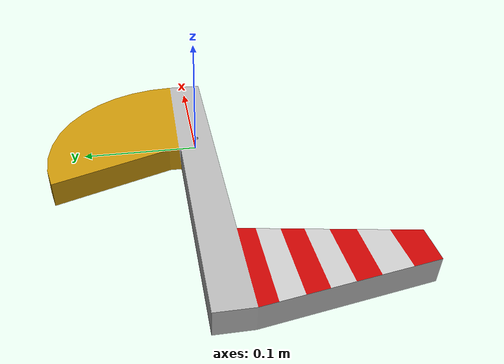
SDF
<?xml version="1.0" ?>
<sdf version="1.5">
  <model name="manchon_jaune">
    <static>true</static>
    <link name="link">
      <collision name="manchon_jaune">
        <pose>0 0 0 0 0 0</pose>
        <geometry>
          <mesh>
            <uri>model://manchon_jaune/manchon_jaune.dae</uri>
            <scale>1.0 1.0 1.0</scale>
          </mesh>
        </geometry>
      </collision>

      <visual name="rock">
        <cast_shadows>true</cast_shadows>
        <pose>0 0 0 0 0 0</pose>
        <geometry>
          <mesh>
            <uri>model://manchon_jaune/manchon_jaune.dae</uri>
            <scale>1.0 1.0 1.0</scale>
          </mesh>
        </geometry>

      </visual>
    </link>
  </model>
</sdf>
